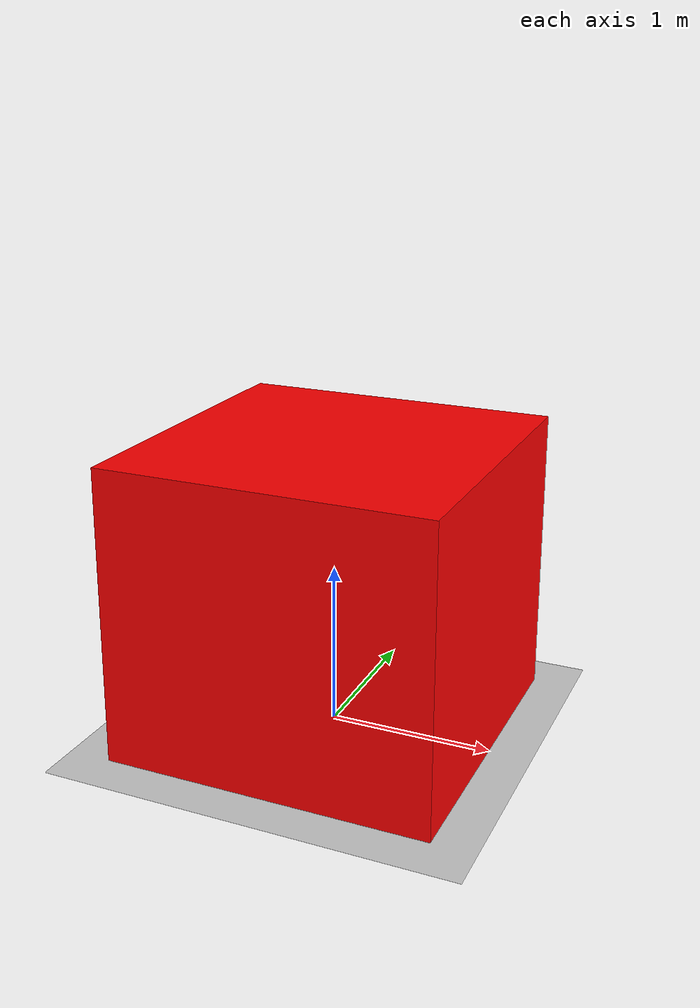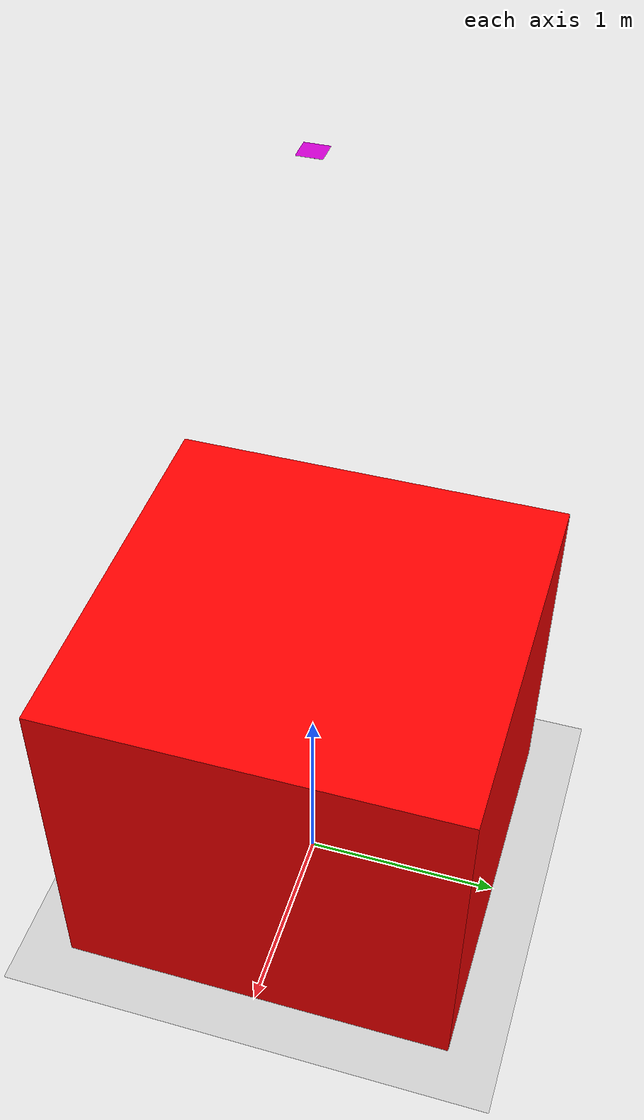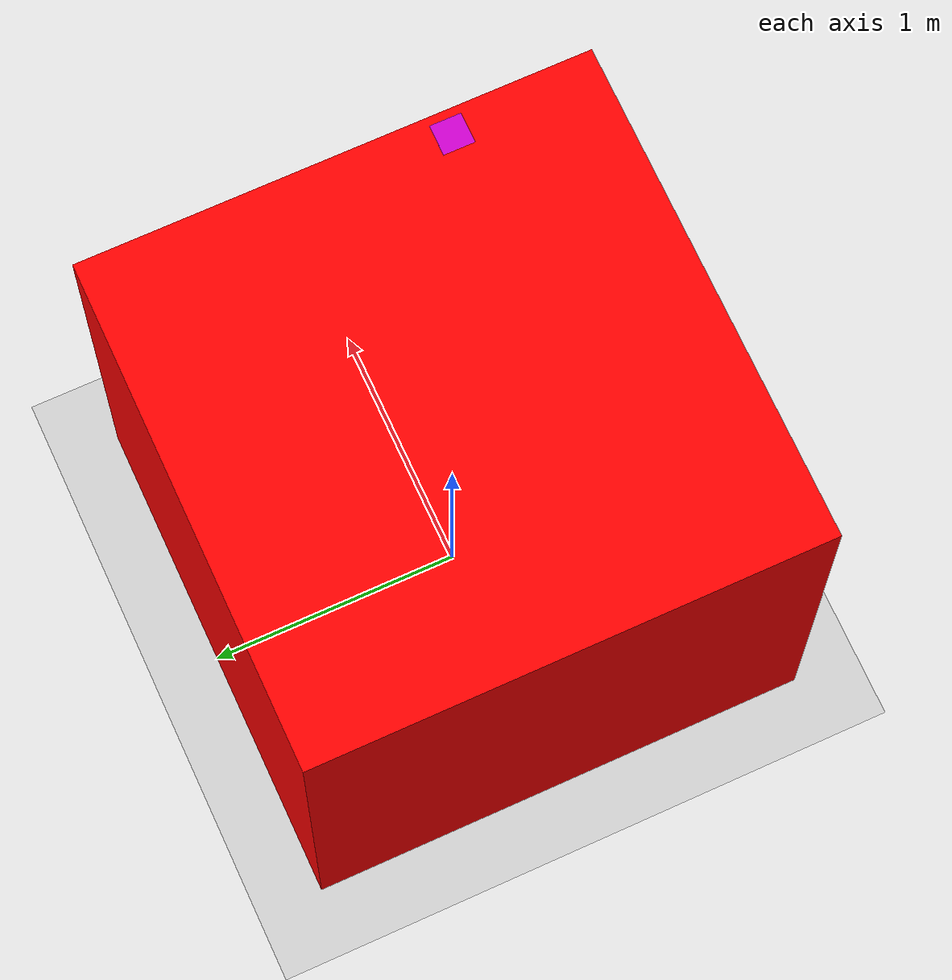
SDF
<?xml version="1.0" ?>
<sdf version="1.11">
  <world name="shapes">

    <plugin
      filename="wgpu_rt_sensor" name="wgpu_sensor::WGPURtSensor"/>

    <plugin filename="gz-sim-physics-system"
            name="gz::sim::systems::Physics">
    </plugin>
    <plugin filename="gz-sim-user-commands-system"
            name="gz::sim::systems::UserCommands">
    </plugin>
    <plugin
      filename="gz-sim-scene-broadcaster-system"
      name="gz::sim::systems::SceneBroadcaster"/>

    <scene>
      <ambient>1.0 1.0 1.0</ambient>
      <background>0.8 0.8 0.8</background>
    </scene>

    <physics name="1ms" type="dart">
      <max_step_size>0.001</max_step_size>
      <real_time_factor>0</real_time_factor>
    </physics>

    <light type="directional" name="sun">
      <cast_shadows>true</cast_shadows>
      <pose>0 0 10 0 0 0</pose>
      <diffuse>0.8 0.8 0.8 1</diffuse>
      <specular>0.2 0.2 0.2 1</specular>
      <attenuation>
        <range>1000</range>
        <constant>0.9</constant>
        <linear>0.01</linear>
        <quadratic>0.001</quadratic>
      </attenuation>
      <direction>-0.5 0.1 -0.9</direction>
    </light>

    <model name="lidar">
      <pose>0 0 4.0 0 0 0</pose>
      <static>true</static>
      <link name="link">
        <collision name="collision">
          <geometry>
            <plane>
              <normal>0 0 1</normal>
              <size>0.1 0.1</size>
            </plane>
          </geometry>
        </collision>
        <visual name="visual">
          <geometry>
            <plane>
              <normal>0 0 1</normal>
              <size>0.1 0.1</size>
            </plane>
          </geometry>
          <material>
            <ambient>0.8 0.0 0.8 1</ambient>
            <diffuse>0.8 0.0 0.8 1</diffuse>
            <specular>0.8 0.0 0.8 1</specular>
          </material>
        </visual>

        <!-- Custom Camera Sensor -->
        <sensor name="my_rt_lidar" type="custom" gz:type="rt_lidar">
              <always_on>1</always_on>
              <update_rate>10</update_rate>
              <topic>/my_robot/lidar/points</topic>
              <gz:rt_lidar>
                <scan>
                  <lasers>5</lasers>
                  <steps>256</steps>
                  <vertical>
                    <min_angle>-0.5</min_angle>
                    <max_angle>0.5</max_angle>
                    <step>0.1</step>
                  </vertical>
                  <horizontal>
                    <min_angle>-3.14</min_angle>
                    <max_angle>3.14</max_angle>
                    <step>0.01</step>
                  </horizontal>
                </scan>
                <range>
                  <min>0.1</min>
                  <max>100.0</max>
                </range>
                <noise>
                  <type>gaussian</type>
                  <mean>0.0</mean>
                  <stddev>0.01</stddev>
                </noise>
              </gz:rt_lidar>
            </sensor>
      </link>
    </model>

    <model name="ground_plane">
      <static>true</static>
      <link name="link">
        <collision name="collision">
          <geometry>
            <plane>
              <normal>0 0 1</normal>
              <size>20 20</size>
            </plane>
          </geometry>
        </collision>
        <visual name="visual">
          <geometry>
            <plane>
              <normal>0 0 1</normal>
              <size>20 20</size>
            </plane>
          </geometry>
          <material>
            <ambient>0.8 0.8 0.8 1</ambient>
            <diffuse>0.8 0.8 0.8 1</diffuse>
            <specular>0.8 0.8 0.8 1</specular>
          </material>
        </visual>
      </link>
    </model>

    <model name="box">
      <pose>0 0 0.8 0 0 0</pose>
      <link name="box_link">
        <inertial>
          <inertia>
            <ixx>0.16666</ixx>
            <ixy>0</ixy>
            <ixz>0</ixz>
            <iyy>0.16666</iyy>
            <iyz>0</iyz>
            <izz>0.16666</izz>
          </inertia>
          <mass>1.0</mass>
        </inertial>
        <collision name="box_collision">
          <geometry>
            <box>
              <size>2 2 2</size>
            </box>
          </geometry>
        </collision>

        <visual name="box_visual">
          <geometry>
            <box>
              <size>2 2 2</size>
            </box>
          </geometry>
          <material>
            <ambient>1 0 0 1</ambient>
            <diffuse>1 0 0 1</diffuse>
            <specular>1 0 0 1</specular>
          </material>
        </visual>
      </link>
    </model>

  </world>
</sdf>
